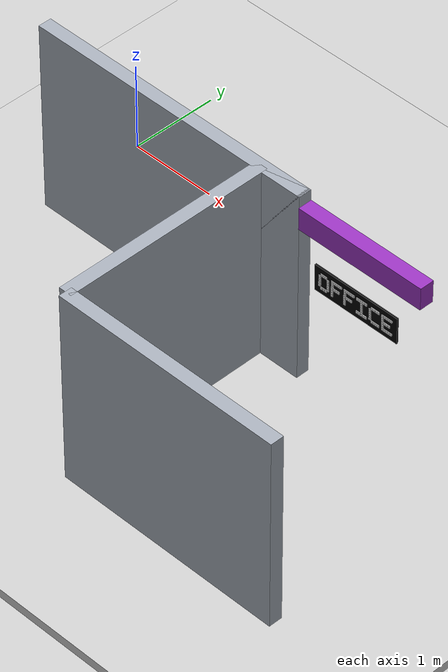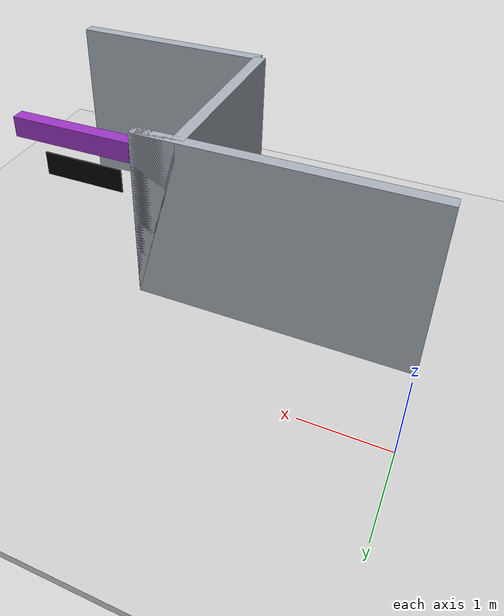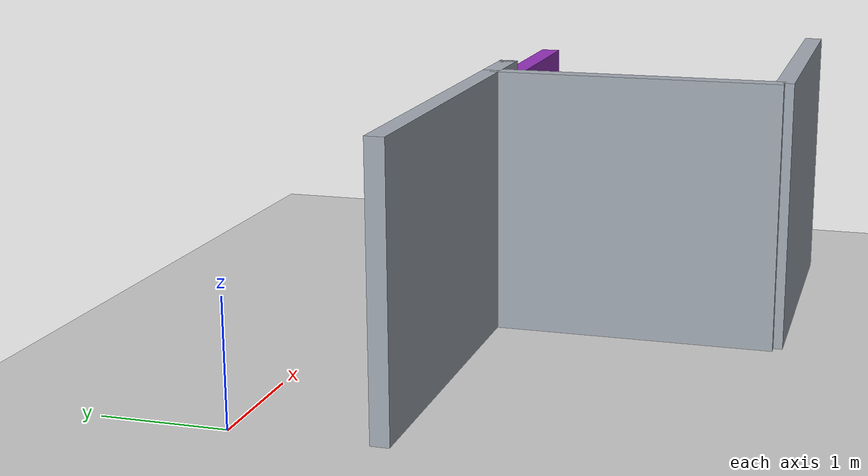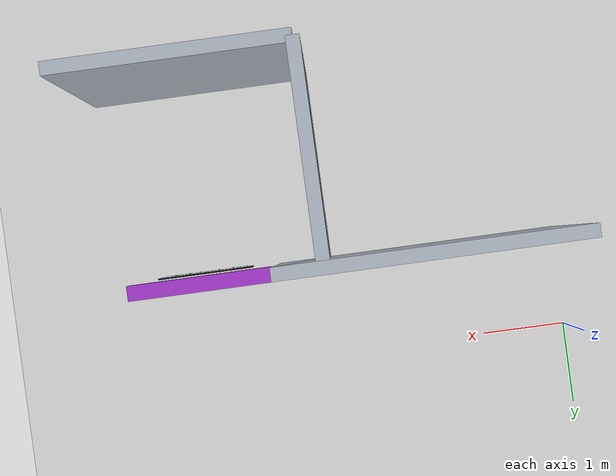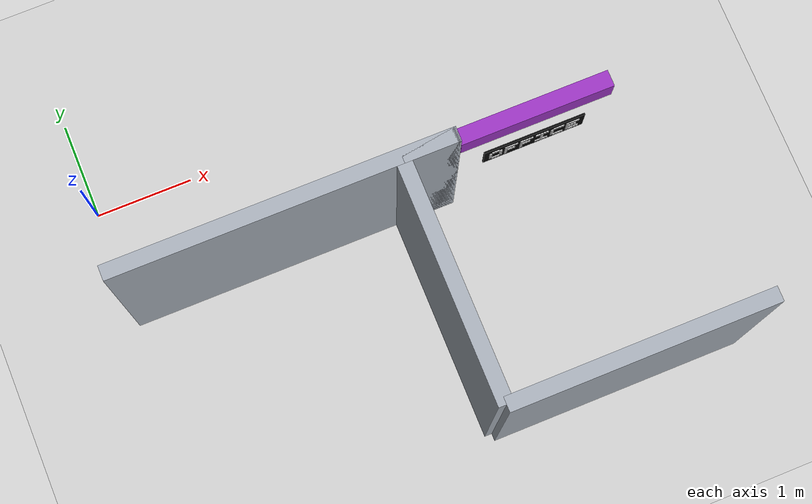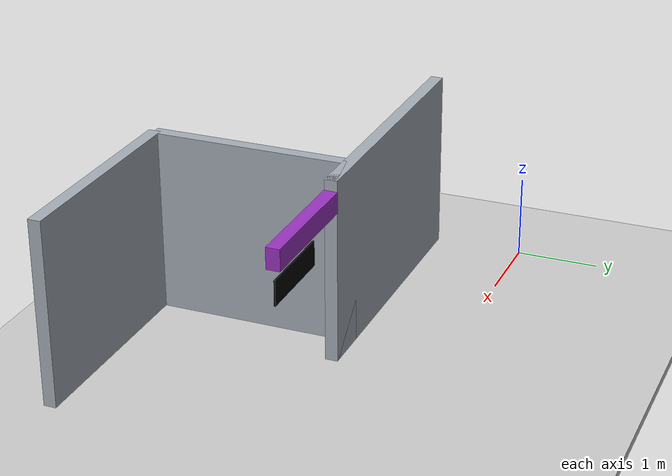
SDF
<sdf version="1.9">
 <world name="default">
  <model name="ground_plane">
   <static>true</static>
   <pose>5.15 0 -0.05 0 0 0</pose>
   <link name="body">
    <collision name="collision"><geometry><box><size>14.3 12 0.1</size></box></geometry></collision>
    <visual name="visual">
     <geometry><box><size>14.3 12 0.1</size></box></geometry>
     <material><ambient>0.8 0.8 0.8 1</ambient><diffuse>0.8 0.8 0.8 1</diffuse></material>
    </visual>
   </link>
  </model>
  <model name="hall_-1_1">
   <static>true</static>
   <pose>1.7000000000000002 -1.15 1.1 0 0 0</pose>
   <link name="body">
    <collision name="collision">
     <geometry><box><size>3.4000000000000004 0.15 2.2</size></box></geometry>
    </collision>
    <visual name="visual">
     <geometry><box><size>3.4000000000000004 0.15 2.2</size></box></geometry>
     <material><ambient>0.65 0.68 0.72 1</ambient><diffuse>0.65 0.68 0.72 1</diffuse></material>
    </visual>
   </link>
  </model>
  <model name="room_-1_1_-1">
   <static>true</static>
   <pose>2.8500000000000005 -2.3499999999999996 1.1 0 0 0</pose>
   <link name="body">
    <collision name="collision"><geometry><box><size>0.15 2.4 2.2</size></box></geometry></collision>
    <visual name="visual">
     <geometry><box><size>0.15 2.4 2.2</size></box></geometry>
     <material><ambient>0.65 0.68 0.72 1</ambient><diffuse>0.65 0.68 0.72 1</diffuse></material>
    </visual>
   </link>
  </model>
  <model name="room_end_-1_1">
   <static>true</static>
   <pose>4.15 -3.55 1.1 0 0 0</pose>
   <link name="body">
    <collision name="collision"><geometry><box><size>2.6 0.15 2.2</size></box></geometry></collision>
    <visual name="visual">
     <geometry><box><size>2.6 0.15 2.2</size></box></geometry>
     <material><ambient>0.65 0.68 0.72 1</ambient><diffuse>0.65 0.68 0.72 1</diffuse></material>
    </visual>
   </link>
  </model>
  <model name="jamb_-1_1_-1">
   <static>true</static>
   <pose>3.1250000000000004 -1.15 1.1 0 0 0</pose>
   <link name="body">
    <collision name="collision"><geometry><box><size>0.55 0.15 2.2</size></box></geometry></collision>
    <visual name="visual">
     <geometry><box><size>0.55 0.15 2.2</size></box></geometry>
     <material><ambient>0.65 0.68 0.72 1</ambient><diffuse>0.65 0.68 0.72 1</diffuse></material>
    </visual>
   </link>
  </model>
  <model name="r3geo_base_r009_right_1_lintel">
   <static>true</static>
   <pose>4.15 -1.15 1.95 0 0 0</pose>
   <link name="body">
    <collision name="collision"><geometry><box><size>1.5 0.16 0.25</size></box></geometry></collision>
    <visual name="visual">
     <geometry><box><size>1.5 0.16 0.25</size></box></geometry>
     <material><ambient>0.6 0.2 0.75 1</ambient><diffuse>0.6 0.2 0.75 1</diffuse></material>
    </visual>
   </link>
  </model>
  <model name="readable_r3geo_base_r009_right_1_entrance_room">
   <static>true</static>
   <pose>4.15 -1.25 1.43 0 0 0</pose>
   <link name="lettering">
    <visual name="backboard">
     <geometry><box><size>1.02 0.018 0.3</size></box></geometry>
     <material>
      <ambient>.015 .015 .015 1</ambient>
      <diffuse>.015 .015 .015 1</diffuse>
      <emissive>.015 .015 .015 1</emissive>
     </material>
     <cast_shadows>false</cast_shadows>
    </visual>
    <visual name="letter_0_0_1">
     <pose>-0.416 -0.014 0.078 0 0 0</pose>
     <geometry><box><size>0.024439999999999996 0.008 0.024439999999999996</size></box></geometry>
     <material>
      <ambient>.96 .96 .96 1</ambient>
      <diffuse>.96 .96 .96 1</diffuse>
      <emissive>.96 .96 .96 1</emissive>
     </material>
     <cast_shadows>false</cast_shadows>
    </visual>
    <visual name="letter_0_0_2">
     <pose>-0.39 -0.014 0.078 0 0 0</pose>
     <geometry><box><size>0.024439999999999996 0.008 0.024439999999999996</size></box></geometry>
     <material>
      <ambient>.96 .96 .96 1</ambient>
      <diffuse>.96 .96 .96 1</diffuse>
      <emissive>.96 .96 .96 1</emissive>
     </material>
     <cast_shadows>false</cast_shadows>
    </visual>
    <visual name="letter_0_0_3">
     <pose>-0.364 -0.014 0.078 0 0 0</pose>
     <geometry><box><size>0.024439999999999996 0.008 0.024439999999999996</size></box></geometry>
     <material>
      <ambient>.96 .96 .96 1</ambient>
      <diffuse>.96 .96 .96 1</diffuse>
      <emissive>.96 .96 .96 1</emissive>
     </material>
     <cast_shadows>false</cast_shadows>
    </visual>
    <visual name="letter_0_1_0">
     <pose>-0.442 -0.014 0.052 0 0 0</pose>
     <geometry><box><size>0.024439999999999996 0.008 0.024439999999999996</size></box></geometry>
     <material>
      <ambient>.96 .96 .96 1</ambient>
      <diffuse>.96 .96 .96 1</diffuse>
      <emissive>.96 .96 .96 1</emissive>
     </material>
     <cast_shadows>false</cast_shadows>
    </visual>
    <visual name="letter_0_1_4">
     <pose>-0.338 -0.014 0.052 0 0 0</pose>
     <geometry><box><size>0.024439999999999996 0.008 0.024439999999999996</size></box></geometry>
     <material>
      <ambient>.96 .96 .96 1</ambient>
      <diffuse>.96 .96 .96 1</diffuse>
      <emissive>.96 .96 .96 1</emissive>
     </material>
     <cast_shadows>false</cast_shadows>
    </visual>
    <visual name="letter_0_2_0">
     <pose>-0.442 -0.014 0.026 0 0 0</pose>
     <geometry><box><size>0.024439999999999996 0.008 0.024439999999999996</size></box></geometry>
     <material>
      <ambient>.96 .96 .96 1</ambient>
      <diffuse>.96 .96 .96 1</diffuse>
      <emissive>.96 .96 .96 1</emissive>
     </material>
     <cast_shadows>false</cast_shadows>
    </visual>
    <visual name="letter_0_2_4">
     <pose>-0.338 -0.014 0.026 0 0 0</pose>
     <geometry><box><size>0.024439999999999996 0.008 0.024439999999999996</size></box></geometry>
     <material>
      <ambient>.96 .96 .96 1</ambient>
      <diffuse>.96 .96 .96 1</diffuse>
      <emissive>.96 .96 .96 1</emissive>
     </material>
     <cast_shadows>false</cast_shadows>
    </visual>
    <visual name="letter_0_3_0">
     <pose>-0.442 -0.014 0 0 0 0</pose>
     <geometry><box><size>0.024439999999999996 0.008 0.024439999999999996</size></box></geometry>
     <material>
      <ambient>.96 .96 .96 1</ambient>
      <diffuse>.96 .96 .96 1</diffuse>
      <emissive>.96 .96 .96 1</emissive>
     </material>
     <cast_shadows>false</cast_shadows>
    </visual>
    <visual name="letter_0_3_4">
     <pose>-0.338 -0.014 0 0 0 0</pose>
     <geometry><box><size>0.024439999999999996 0.008 0.024439999999999996</size></box></geometry>
     <material>
      <ambient>.96 .96 .96 1</ambient>
      <diffuse>.96 .96 .96 1</diffuse>
      <emissive>.96 .96 .96 1</emissive>
     </material>
     <cast_shadows>false</cast_shadows>
    </visual>
    <visual name="letter_0_4_0">
     <pose>-0.442 -0.014 -0.026 0 0 0</pose>
     <geometry><box><size>0.024439999999999996 0.008 0.024439999999999996</size></box></geometry>
     <material>
      <ambient>.96 .96 .96 1</ambient>
      <diffuse>.96 .96 .96 1</diffuse>
      <emissive>.96 .96 .96 1</emissive>
     </material>
     <cast_shadows>false</cast_shadows>
    </visual>
    <visual name="letter_0_4_4">
     <pose>-0.338 -0.014 -0.026 0 0 0</pose>
     <geometry><box><size>0.024439999999999996 0.008 0.024439999999999996</size></box></geometry>
     <material>
      <ambient>.96 .96 .96 1</ambient>
      <diffuse>.96 .96 .96 1</diffuse>
      <emissive>.96 .96 .96 1</emissive>
     </material>
     <cast_shadows>false</cast_shadows>
    </visual>
    <visual name="letter_0_5_0">
     <pose>-0.442 -0.014 -0.052 0 0 0</pose>
     <geometry><box><size>0.024439999999999996 0.008 0.024439999999999996</size></box></geometry>
     <material>
      <ambient>.96 .96 .96 1</ambient>
      <diffuse>.96 .96 .96 1</diffuse>
      <emissive>.96 .96 .96 1</emissive>
     </material>
     <cast_shadows>false</cast_shadows>
    </visual>
    <visual name="letter_0_5_4">
     <pose>-0.338 -0.014 -0.052 0 0 0</pose>
     <geometry><box><size>0.024439999999999996 0.008 0.024439999999999996</size></box></geometry>
     <material>
      <ambient>.96 .96 .96 1</ambient>
      <diffuse>.96 .96 .96 1</diffuse>
      <emissive>.96 .96 .96 1</emissive>
     </material>
     <cast_shadows>false</cast_shadows>
    </visual>
    <visual name="letter_0_6_1">
     <pose>-0.416 -0.014 -0.078 0 0 0</pose>
     <geometry><box><size>0.024439999999999996 0.008 0.024439999999999996</size></box></geometry>
     <material>
      <ambient>.96 .96 .96 1</ambient>
      <diffuse>.96 .96 .96 1</diffuse>
      <emissive>.96 .96 .96 1</emissive>
     </material>
     <cast_shadows>false</cast_shadows>
    </visual>
    <visual name="letter_0_6_2">
     <pose>-0.39 -0.014 -0.078 0 0 0</pose>
     <geometry><box><size>0.024439999999999996 0.008 0.024439999999999996</size></box></geometry>
     <material>
      <ambient>.96 .96 .96 1</ambient>
      <diffuse>.96 .96 .96 1</diffuse>
      <emissive>.96 .96 .96 1</emissive>
     </material>
     <cast_shadows>false</cast_shadows>
    </visual>
    <visual name="letter_0_6_3">
     <pose>-0.364 -0.014 -0.078 0 0 0</pose>
     <geometry><box><size>0.024439999999999996 0.008 0.024439999999999996</size></box></geometry>
     <material>
      <ambient>.96 .96 .96 1</ambient>
      <diffuse>.96 .96 .96 1</diffuse>
      <emissive>.96 .96 .96 1</emissive>
     </material>
     <cast_shadows>false</cast_shadows>
    </visual>
    <visual name="letter_1_0_0">
     <pose>-0.286 -0.014 0.078 0 0 0</pose>
     <geometry><box><size>0.024439999999999996 0.008 0.024439999999999996</size></box></geometry>
     <material>
      <ambient>.96 .96 .96 1</ambient>
      <diffuse>.96 .96 .96 1</diffuse>
      <emissive>.96 .96 .96 1</emissive>
     </material>
     <cast_shadows>false</cast_shadows>
    </visual>
    <visual name="letter_1_0_1">
     <pose>-0.26 -0.014 0.078 0 0 0</pose>
     <geometry><box><size>0.024439999999999996 0.008 0.024439999999999996</size></box></geometry>
     <material>
      <ambient>.96 .96 .96 1</ambient>
      <diffuse>.96 .96 .96 1</diffuse>
      <emissive>.96 .96 .96 1</emissive>
     </material>
     <cast_shadows>false</cast_shadows>
    </visual>
    <visual name="letter_1_0_2">
     <pose>-0.234 -0.014 0.078 0 0 0</pose>
     <geometry><box><size>0.024439999999999996 0.008 0.024439999999999996</size></box></geometry>
     <material>
      <ambient>.96 .96 .96 1</ambient>
      <diffuse>.96 .96 .96 1</diffuse>
      <emissive>.96 .96 .96 1</emissive>
     </material>
     <cast_shadows>false</cast_shadows>
    </visual>
    <visual name="letter_1_0_3">
     <pose>-0.208 -0.014 0.078 0 0 0</pose>
     <geometry><box><size>0.024439999999999996 0.008 0.024439999999999996</size></box></geometry>
     <material>
      <ambient>.96 .96 .96 1</ambient>
      <diffuse>.96 .96 .96 1</diffuse>
      <emissive>.96 .96 .96 1</emissive>
     </material>
     <cast_shadows>false</cast_shadows>
    </visual>
    <visual name="letter_1_0_4">
     <pose>-0.182 -0.014 0.078 0 0 0</pose>
     <geometry><box><size>0.024439999999999996 0.008 0.024439999999999996</size></box></geometry>
     <material>
      <ambient>.96 .96 .96 1</ambient>
      <diffuse>.96 .96 .96 1</diffuse>
      <emissive>.96 .96 .96 1</emissive>
     </material>
     <cast_shadows>false</cast_shadows>
    </visual>
    <visual name="letter_1_1_0">
     <pose>-0.286 -0.014 0.052 0 0 0</pose>
     <geometry><box><size>0.024439999999999996 0.008 0.024439999999999996</size></box></geometry>
     <material>
      <ambient>.96 .96 .96 1</ambient>
      <diffuse>.96 .96 .96 1</diffuse>
      <emissive>.96 .96 .96 1</emissive>
     </material>
     <cast_shadows>false</cast_shadows>
    </visual>
    <visual name="letter_1_2_0">
     <pose>-0.286 -0.014 0.026 0 0 0</pose>
     <geometry><box><size>0.024439999999999996 0.008 0.024439999999999996</size></box></geometry>
     <material>
      <ambient>.96 .96 .96 1</ambient>
      <diffuse>.96 .96 .96 1</diffuse>
      <emissive>.96 .96 .96 1</emissive>
     </material>
     <cast_shadows>false</cast_shadows>
    </visual>
    <visual name="letter_1_3_0">
     <pose>-0.286 -0.014 0 0 0 0</pose>
     <geometry><box><size>0.024439999999999996 0.008 0.024439999999999996</size></box></geometry>
     <material>
      <ambient>.96 .96 .96 1</ambient>
      <diffuse>.96 .96 .96 1</diffuse>
      <emissive>.96 .96 .96 1</emissive>
     </material>
     <cast_shadows>false</cast_shadows>
    </visual>
    <visual name="letter_1_3_1">
     <pose>-0.26 -0.014 0 0 0 0</pose>
     <geometry><box><size>0.024439999999999996 0.008 0.024439999999999996</size></box></geometry>
     <material>
      <ambient>.96 .96 .96 1</ambient>
      <diffuse>.96 .96 .96 1</diffuse>
      <emissive>.96 .96 .96 1</emissive>
     </material>
     <cast_shadows>false</cast_shadows>
    </visual>
    <visual name="letter_1_3_2">
     <pose>-0.234 -0.014 0 0 0 0</pose>
     <geometry><box><size>0.024439999999999996 0.008 0.024439999999999996</size></box></geometry>
     <material>
      <ambient>.96 .96 .96 1</ambient>
      <diffuse>.96 .96 .96 1</diffuse>
      <emissive>.96 .96 .96 1</emissive>
     </material>
     <cast_shadows>false</cast_shadows>
    </visual>
    <visual name="letter_1_3_3">
     <pose>-0.208 -0.014 0 0 0 0</pose>
     <geometry><box><size>0.024439999999999996 0.008 0.024439999999999996</size></box></geometry>
     <material>
      <ambient>.96 .96 .96 1</ambient>
      <diffuse>.96 .96 .96 1</diffuse>
      <emissive>.96 .96 .96 1</emissive>
     </material>
     <cast_shadows>false</cast_shadows>
    </visual>
    <visual name="letter_1_4_0">
     <pose>-0.286 -0.014 -0.026 0 0 0</pose>
     <geometry><box><size>0.024439999999999996 0.008 0.024439999999999996</size></box></geometry>
     <material>
      <ambient>.96 .96 .96 1</ambient>
      <diffuse>.96 .96 .96 1</diffuse>
      <emissive>.96 .96 .96 1</emissive>
     </material>
     <cast_shadows>false</cast_shadows>
    </visual>
    <visual name="letter_1_5_0">
     <pose>-0.286 -0.014 -0.052 0 0 0</pose>
     <geometry><box><size>0.024439999999999996 0.008 0.024439999999999996</size></box></geometry>
     <material>
      <ambient>.96 .96 .96 1</ambient>
      <diffuse>.96 .96 .96 1</diffuse>
      <emissive>.96 .96 .96 1</emissive>
     </material>
     <cast_shadows>false</cast_shadows>
    </visual>
    <visual name="letter_1_6_0">
     <pose>-0.286 -0.014 -0.078 0 0 0</pose>
     <geometry><box><size>0.024439999999999996 0.008 0.024439999999999996</size></box></geometry>
     <material>
      <ambient>.96 .96 .96 1</ambient>
      <diffuse>.96 .96 .96 1</diffuse>
      <emissive>.96 .96 .96 1</emissive>
     </material>
     <cast_shadows>false</cast_shadows>
    </visual>
    <visual name="letter_2_0_0">
     <pose>-0.13 -0.014 0.078 0 0 0</pose>
     <geometry><box><size>0.024439999999999996 0.008 0.024439999999999996</size></box></geometry>
     <material>
      <ambient>.96 .96 .96 1</ambient>
      <diffuse>.96 .96 .96 1</diffuse>
      <emissive>.96 .96 .96 1</emissive>
     </material>
     <cast_shadows>false</cast_shadows>
    </visual>
    <visual name="letter_2_0_1">
     <pose>-0.104 -0.014 0.078 0 0 0</pose>
     <geometry><box><size>0.024439999999999996 0.008 0.024439999999999996</size></box></geometry>
     <material>
      <ambient>.96 .96 .96 1</ambient>
      <diffuse>.96 .96 .96 1</diffuse>
      <emissive>.96 .96 .96 1</emissive>
     </material>
     <cast_shadows>false</cast_shadows>
    </visual>
    <visual name="letter_2_0_2">
     <pose>-0.078 -0.014 0.078 0 0 0</pose>
     <geometry><box><size>0.024439999999999996 0.008 0.024439999999999996</size></box></geometry>
     <material>
      <ambient>.96 .96 .96 1</ambient>
      <diffuse>.96 .96 .96 1</diffuse>
      <emissive>.96 .96 .96 1</emissive>
     </material>
     <cast_shadows>false</cast_shadows>
    </visual>
    <visual name="letter_2_0_3">
     <pose>-0.052 -0.014 0.078 0 0 0</pose>
     <geometry><box><size>0.024439999999999996 0.008 0.024439999999999996</size></box></geometry>
     <material>
      <ambient>.96 .96 .96 1</ambient>
      <diffuse>.96 .96 .96 1</diffuse>
      <emissive>.96 .96 .96 1</emissive>
     </material>
     <cast_shadows>false</cast_shadows>
    </visual>
    <visual name="letter_2_0_4">
     <pose>-0.026 -0.014 0.078 0 0 0</pose>
     <geometry><box><size>0.024439999999999996 0.008 0.024439999999999996</size></box></geometry>
     <material>
      <ambient>.96 .96 .96 1</ambient>
      <diffuse>.96 .96 .96 1</diffuse>
      <emissive>.96 .96 .96 1</emissive>
     </material>
     <cast_shadows>false</cast_shadows>
    </visual>
    <visual name="letter_2_1_0">
     <pose>-0.13 -0.014 0.052 0 0 0</pose>
     <geometry><box><size>0.024439999999999996 0.008 0.024439999999999996</size></box></geometry>
     <material>
      <ambient>.96 .96 .96 1</ambient>
      <diffuse>.96 .96 .96 1</diffuse>
      <emissive>.96 .96 .96 1</emissive>
     </material>
     <cast_shadows>false</cast_shadows>
    </visual>
    <visual name="letter_2_2_0">
     <pose>-0.13 -0.014 0.026 0 0 0</pose>
     <geometry><box><size>0.024439999999999996 0.008 0.024439999999999996</size></box></geometry>
     <material>
      <ambient>.96 .96 .96 1</ambient>
      <diffuse>.96 .96 .96 1</diffuse>
      <emissive>.96 .96 .96 1</emissive>
     </material>
     <cast_shadows>false</cast_shadows>
    </visual>
    <visual name="letter_2_3_0">
     <pose>-0.13 -0.014 0 0 0 0</pose>
     <geometry><box><size>0.024439999999999996 0.008 0.024439999999999996</size></box></geometry>
     <material>
      <ambient>.96 .96 .96 1</ambient>
      <diffuse>.96 .96 .96 1</diffuse>
      <emissive>.96 .96 .96 1</emissive>
     </material>
     <cast_shadows>false</cast_shadows>
    </visual>
    <visual name="letter_2_3_1">
     <pose>-0.104 -0.014 0 0 0 0</pose>
     <geometry><box><size>0.024439999999999996 0.008 0.024439999999999996</size></box></geometry>
     <material>
      <ambient>.96 .96 .96 1</ambient>
      <diffuse>.96 .96 .96 1</diffuse>
      <emissive>.96 .96 .96 1</emissive>
     </material>
     <cast_shadows>false</cast_shadows>
    </visual>
    <visual name="letter_2_3_2">
     <pose>-0.078 -0.014 0 0 0 0</pose>
     <geometry><box><size>0.024439999999999996 0.008 0.024439999999999996</size></box></geometry>
     <material>
      <ambient>.96 .96 .96 1</ambient>
      <diffuse>.96 .96 .96 1</diffuse>
      <emissive>.96 .96 .96 1</emissive>
     </material>
     <cast_shadows>false</cast_shadows>
    </visual>
    <visual name="letter_2_3_3">
     <pose>-0.052 -0.014 0 0 0 0</pose>
     <geometry><box><size>0.024439999999999996 0.008 0.024439999999999996</size></box></geometry>
     <material>
      <ambient>.96 .96 .96 1</ambient>
      <diffuse>.96 .96 .96 1</diffuse>
      <emissive>.96 .96 .96 1</emissive>
     </material>
     <cast_shadows>false</cast_shadows>
    </visual>
    <visual name="letter_2_4_0">
     <pose>-0.13 -0.014 -0.026 0 0 0</pose>
     <geometry><box><size>0.024439999999999996 0.008 0.024439999999999996</size></box></geometry>
     <material>
      <ambient>.96 .96 .96 1</ambient>
      <diffuse>.96 .96 .96 1</diffuse>
      <emissive>.96 .96 .96 1</emissive>
     </material>
     <cast_shadows>false</cast_shadows>
    </visual>
    <visual name="letter_2_5_0">
     <pose>-0.13 -0.014 -0.052 0 0 0</pose>
     <geometry><box><size>0.024439999999999996 0.008 0.024439999999999996</size></box></geometry>
     <material>
      <ambient>.96 .96 .96 1</ambient>
      <diffuse>.96 .96 .96 1</diffuse>
      <emissive>.96 .96 .96 1</emissive>
     </material>
     <cast_shadows>false</cast_shadows>
    </visual>
    <visual name="letter_2_6_0">
     <pose>-0.13 -0.014 -0.078 0 0 0</pose>
     <geometry><box><size>0.024439999999999996 0.008 0.024439999999999996</size></box></geometry>
     <material>
      <ambient>.96 .96 .96 1</ambient>
      <diffuse>.96 .96 .96 1</diffuse>
      <emissive>.96 .96 .96 1</emissive>
     </material>
     <cast_shadows>false</cast_shadows>
    </visual>
    <visual name="letter_3_0_0">
     <pose>0.026 -0.014 0.078 0 0 0</pose>
     <geometry><box><size>0.024439999999999996 0.008 0.024439999999999996</size></box></geometry>
     <material>
      <ambient>.96 .96 .96 1</ambient>
      <diffuse>.96 .96 .96 1</diffuse>
      <emissive>.96 .96 .96 1</emissive>
     </material>
     <cast_shadows>false</cast_shadows>
    </visual>
    <visual name="letter_3_0_1">
     <pose>0.052 -0.014 0.078 0 0 0</pose>
     <geometry><box><size>0.024439999999999996 0.008 0.024439999999999996</size></box></geometry>
     <material>
      <ambient>.96 .96 .96 1</ambient>
      <diffuse>.96 .96 .96 1</diffuse>
      <emissive>.96 .96 .96 1</emissive>
     </material>
     <cast_shadows>false</cast_shadows>
    </visual>
    <visual name="letter_3_0_2">
     <pose>0.078 -0.014 0.078 0 0 0</pose>
     <geometry><box><size>0.024439999999999996 0.008 0.024439999999999996</size></box></geometry>
     <material>
      <ambient>.96 .96 .96 1</ambient>
      <diffuse>.96 .96 .96 1</diffuse>
      <emissive>.96 .96 .96 1</emissive>
     </material>
     <cast_shadows>false</cast_shadows>
    </visual>
    <visual name="letter_3_0_3">
     <pose>0.104 -0.014 0.078 0 0 0</pose>
     <geometry><box><size>0.024439999999999996 0.008 0.024439999999999996</size></box></geometry>
     <material>
      <ambient>.96 .96 .96 1</ambient>
      <diffuse>.96 .96 .96 1</diffuse>
      <emissive>.96 .96 .96 1</emissive>
     </material>
     <cast_shadows>false</cast_shadows>
    </visual>
    <visual name="letter_3_0_4">
     <pose>0.13 -0.014 0.078 0 0 0</pose>
     <geometry><box><size>0.024439999999999996 0.008 0.024439999999999996</size></box></geometry>
     <material>
      <ambient>.96 .96 .96 1</ambient>
      <diffuse>.96 .96 .96 1</diffuse>
      <emissive>.96 .96 .96 1</emissive>
     </material>
     <cast_shadows>false</cast_shadows>
    </visual>
    <visual name="letter_3_1_2">
     <pose>0.078 -0.014 0.052 0 0 0</pose>
     <geometry><box><size>0.024439999999999996 0.008 0.024439999999999996</size></box></geometry>
     <material>
      <ambient>.96 .96 .96 1</ambient>
      <diffuse>.96 .96 .96 1</diffuse>
      <emissive>.96 .96 .96 1</emissive>
     </material>
     <cast_shadows>false</cast_shadows>
    </visual>
    <visual name="letter_3_2_2">
     <pose>0.078 -0.014 0.026 0 0 0</pose>
     <geometry><box><size>0.024439999999999996 0.008 0.024439999999999996</size></box></geometry>
     <material>
      <ambient>.96 .96 .96 1</ambient>
      <diffuse>.96 .96 .96 1</diffuse>
      <emissive>.96 .96 .96 1</emissive>
     </material>
     <cast_shadows>false</cast_shadows>
    </visual>
    <visual name="letter_3_3_2">
     <pose>0.078 -0.014 0 0 0 0</pose>
     <geometry><box><size>0.024439999999999996 0.008 0.024439999999999996</size></box></geometry>
     <material>
      <ambient>.96 .96 .96 1</ambient>
      <diffuse>.96 .96 .96 1</diffuse>
      <emissive>.96 .96 .96 1</emissive>
     </material>
     <cast_shadows>false</cast_shadows>
    </visual>
    <visual name="letter_3_4_2">
     <pose>0.078 -0.014 -0.026 0 0 0</pose>
     <geometry><box><size>0.024439999999999996 0.008 0.024439999999999996</size></box></geometry>
     <material>
      <ambient>.96 .96 .96 1</ambient>
      <diffuse>.96 .96 .96 1</diffuse>
      <emissive>.96 .96 .96 1</emissive>
     </material>
     <cast_shadows>false</cast_shadows>
    </visual>
    <visual name="letter_3_5_2">
     <pose>0.078 -0.014 -0.052 0 0 0</pose>
     <geometry><box><size>0.024439999999999996 0.008 0.024439999999999996</size></box></geometry>
     <material>
      <ambient>.96 .96 .96 1</ambient>
      <diffuse>.96 .96 .96 1</diffuse>
      <emissive>.96 .96 .96 1</emissive>
     </material>
     <cast_shadows>false</cast_shadows>
    </visual>
    <visual name="letter_3_6_0">
     <pose>0.026 -0.014 -0.078 0 0 0</pose>
     <geometry><box><size>0.024439999999999996 0.008 0.024439999999999996</size></box></geometry>
     <material>
      <ambient>.96 .96 .96 1</ambient>
      <diffuse>.96 .96 .96 1</diffuse>
      <emissive>.96 .96 .96 1</emissive>
     </material>
     <cast_shadows>false</cast_shadows>
    </visual>
    <visual name="letter_3_6_1">
     <pose>0.052 -0.014 -0.078 0 0 0</pose>
     <geometry><box><size>0.024439999999999996 0.008 0.024439999999999996</size></box></geometry>
     <material>
      <ambient>.96 .96 .96 1</ambient>
      <diffuse>.96 .96 .96 1</diffuse>
      <emissive>.96 .96 .96 1</emissive>
     </material>
     <cast_shadows>false</cast_shadows>
    </visual>
    <visual name="letter_3_6_2">
     <pose>0.078 -0.014 -0.078 0 0 0</pose>
     <geometry><box><size>0.024439999999999996 0.008 0.024439999999999996</size></box></geometry>
     <material>
      <ambient>.96 .96 .96 1</ambient>
      <diffuse>.96 .96 .96 1</diffuse>
      <emissive>.96 .96 .96 1</emissive>
     </material>
     <cast_shadows>false</cast_shadows>
    </visual>
    <visual name="letter_3_6_3">
     <pose>0.104 -0.014 -0.078 0 0 0</pose>
     <geometry><box><size>0.024439999999999996 0.008 0.024439999999999996</size></box></geometry>
     <material>
      <ambient>.96 .96 .96 1</ambient>
      <diffuse>.96 .96 .96 1</diffuse>
      <emissive>.96 .96 .96 1</emissive>
     </material>
     <cast_shadows>false</cast_shadows>
    </visual>
    <visual name="letter_3_6_4">
     <pose>0.13 -0.014 -0.078 0 0 0</pose>
     <geometry><box><size>0.024439999999999996 0.008 0.024439999999999996</size></box></geometry>
     <material>
      <ambient>.96 .96 .96 1</ambient>
      <diffuse>.96 .96 .96 1</diffuse>
      <emissive>.96 .96 .96 1</emissive>
     </material>
     <cast_shadows>false</cast_shadows>
    </visual>
    <visual name="letter_4_0_1">
     <pose>0.208 -0.014 0.078 0 0 0</pose>
     <geometry><box><size>0.024439999999999996 0.008 0.024439999999999996</size></box></geometry>
     <material>
      <ambient>.96 .96 .96 1</ambient>
      <diffuse>.96 .96 .96 1</diffuse>
      <emissive>.96 .96 .96 1</emissive>
     </material>
     <cast_shadows>false</cast_shadows>
    </visual>
    <visual name="letter_4_0_2">
     <pose>0.234 -0.014 0.078 0 0 0</pose>
     <geometry><box><size>0.024439999999999996 0.008 0.024439999999999996</size></box></geometry>
     <material>
      <ambient>.96 .96 .96 1</ambient>
      <diffuse>.96 .96 .96 1</diffuse>
      <emissive>.96 .96 .96 1</emissive>
     </material>
     <cast_shadows>false</cast_shadows>
    </visual>
    <visual name="letter_4_0_3">
     <pose>0.26 -0.014 0.078 0 0 0</pose>
     <geometry><box><size>0.024439999999999996 0.008 0.024439999999999996</size></box></geometry>
     <material>
      <ambient>.96 .96 .96 1</ambient>
      <diffuse>.96 .96 .96 1</diffuse>
      <emissive>.96 .96 .96 1</emissive>
     </material>
     <cast_shadows>false</cast_shadows>
    </visual>
    <visual name="letter_4_0_4">
     <pose>0.286 -0.014 0.078 0 0 0</pose>
     <geometry><box><size>0.024439999999999996 0.008 0.024439999999999996</size></box></geometry>
     <material>
      <ambient>.96 .96 .96 1</ambient>
      <diffuse>.96 .96 .96 1</diffuse>
      <emissive>.96 .96 .96 1</emissive>
     </material>
     <cast_shadows>false</cast_shadows>
    </visual>
    <visual name="letter_4_1_0">
     <pose>0.182 -0.014 0.052 0 0 0</pose>
     <geometry><box><size>0.024439999999999996 0.008 0.024439999999999996</size></box></geometry>
     <material>
      <ambient>.96 .96 .96 1</ambient>
      <diffuse>.96 .96 .96 1</diffuse>
      <emissive>.96 .96 .96 1</emissive>
     </material>
     <cast_shadows>false</cast_shadows>
    </visual>
    <visual name="letter_4_2_0">
     <pose>0.182 -0.014 0.026 0 0 0</pose>
     <geometry><box><size>0.024439999999999996 0.008 0.024439999999999996</size></box></geometry>
     <material>
      <ambient>.96 .96 .96 1</ambient>
      <diffuse>.96 .96 .96 1</diffuse>
      <emissive>.96 .96 .96 1</emissive>
     </material>
     <cast_shadows>false</cast_shadows>
    </visual>
    <visual name="letter_4_3_0">
     <pose>0.182 -0.014 0 0 0 0</pose>
     <geometry><box><size>0.024439999999999996 0.008 0.024439999999999996</size></box></geometry>
     <material>
      <ambient>.96 .96 .96 1</ambient>
      <diffuse>.96 .96 .96 1</diffuse>
      <emissive>.96 .96 .96 1</emissive>
     </material>
     <cast_shadows>false</cast_shadows>
    </visual>
    <visual name="letter_4_4_0">
     <pose>0.182 -0.014 -0.026 0 0 0</pose>
     <geometry><box><size>0.024439999999999996 0.008 0.024439999999999996</size></box></geometry>
     <material>
      <ambient>.96 .96 .96 1</ambient>
      <diffuse>.96 .96 .96 1</diffuse>
      <emissive>.96 .96 .96 1</emissive>
     </material>
     <cast_shadows>false</cast_shadows>
    </visual>
    <visual name="letter_4_5_0">
     <pose>0.182 -0.014 -0.052 0 0 0</pose>
     <geometry><box><size>0.024439999999999996 0.008 0.024439999999999996</size></box></geometry>
     <material>
      <ambient>.96 .96 .96 1</ambient>
      <diffuse>.96 .96 .96 1</diffuse>
      <emissive>.96 .96 .96 1</emissive>
     </material>
     <cast_shadows>false</cast_shadows>
    </visual>
    <visual name="letter_4_6_1">
     <pose>0.208 -0.014 -0.078 0 0 0</pose>
     <geometry><box><size>0.024439999999999996 0.008 0.024439999999999996</size></box></geometry>
     <material>
      <ambient>.96 .96 .96 1</ambient>
      <diffuse>.96 .96 .96 1</diffuse>
      <emissive>.96 .96 .96 1</emissive>
     </material>
     <cast_shadows>false</cast_shadows>
    </visual>
    <visual name="letter_4_6_2">
     <pose>0.234 -0.014 -0.078 0 0 0</pose>
     <geometry><box><size>0.024439999999999996 0.008 0.024439999999999996</size></box></geometry>
     <material>
      <ambient>.96 .96 .96 1</ambient>
      <diffuse>.96 .96 .96 1</diffuse>
      <emissive>.96 .96 .96 1</emissive>
     </material>
     <cast_shadows>false</cast_shadows>
    </visual>
    <visual name="letter_4_6_3">
     <pose>0.26 -0.014 -0.078 0 0 0</pose>
     <geometry><box><size>0.024439999999999996 0.008 0.024439999999999996</size></box></geometry>
     <material>
      <ambient>.96 .96 .96 1</ambient>
      <diffuse>.96 .96 .96 1</diffuse>
      <emissive>.96 .96 .96 1</emissive>
     </material>
     <cast_shadows>false</cast_shadows>
    </visual>
    <visual name="letter_4_6_4">
     <pose>0.286 -0.014 -0.078 0 0 0</pose>
     <geometry><box><size>0.024439999999999996 0.008 0.024439999999999996</size></box></geometry>
     <material>
      <ambient>.96 .96 .96 1</ambient>
      <diffuse>.96 .96 .96 1</diffuse>
      <emissive>.96 .96 .96 1</emissive>
     </material>
     <cast_shadows>false</cast_shadows>
    </visual>
    <visual name="letter_5_0_0">
     <pose>0.338 -0.014 0.078 0 0 0</pose>
     <geometry><box><size>0.024439999999999996 0.008 0.024439999999999996</size></box></geometry>
     <material>
      <ambient>.96 .96 .96 1</ambient>
      <diffuse>.96 .96 .96 1</diffuse>
      <emissive>.96 .96 .96 1</emissive>
     </material>
     <cast_shadows>false</cast_shadows>
    </visual>
    <visual name="letter_5_0_1">
     <pose>0.364 -0.014 0.078 0 0 0</pose>
     <geometry><box><size>0.024439999999999996 0.008 0.024439999999999996</size></box></geometry>
     <material>
      <ambient>.96 .96 .96 1</ambient>
      <diffuse>.96 .96 .96 1</diffuse>
      <emissive>.96 .96 .96 1</emissive>
     </material>
     <cast_shadows>false</cast_shadows>
    </visual>
    <visual name="letter_5_0_2">
     <pose>0.39 -0.014 0.078 0 0 0</pose>
     <geometry><box><size>0.024439999999999996 0.008 0.024439999999999996</size></box></geometry>
     <material>
      <ambient>.96 .96 .96 1</ambient>
      <diffuse>.96 .96 .96 1</diffuse>
      <emissive>.96 .96 .96 1</emissive>
     </material>
     <cast_shadows>false</cast_shadows>
    </visual>
    <visual name="letter_5_0_3">
     <pose>0.416 -0.014 0.078 0 0 0</pose>
     <geometry><box><size>0.024439999999999996 0.008 0.024439999999999996</size></box></geometry>
     <material>
      <ambient>.96 .96 .96 1</ambient>
      <diffuse>.96 .96 .96 1</diffuse>
      <emissive>.96 .96 .96 1</emissive>
     </material>
     <cast_shadows>false</cast_shadows>
    </visual>
    <visual name="letter_5_0_4">
     <pose>0.442 -0.014 0.078 0 0 0</pose>
     <geometry><box><size>0.024439999999999996 0.008 0.024439999999999996</size></box></geometry>
     <material>
      <ambient>.96 .96 .96 1</ambient>
      <diffuse>.96 .96 .96 1</diffuse>
      <emissive>.96 .96 .96 1</emissive>
     </material>
     <cast_shadows>false</cast_shadows>
    </visual>
    <visual name="letter_5_1_0">
     <pose>0.338 -0.014 0.052 0 0 0</pose>
     <geometry><box><size>0.024439999999999996 0.008 0.024439999999999996</size></box></geometry>
     <material>
      <ambient>.96 .96 .96 1</ambient>
      <diffuse>.96 .96 .96 1</diffuse>
      <emissive>.96 .96 .96 1</emissive>
     </material>
     <cast_shadows>false</cast_shadows>
    </visual>
    <visual name="letter_5_2_0">
     <pose>0.338 -0.014 0.026 0 0 0</pose>
     <geometry><box><size>0.024439999999999996 0.008 0.024439999999999996</size></box></geometry>
     <material>
      <ambient>.96 .96 .96 1</ambient>
      <diffuse>.96 .96 .96 1</diffuse>
      <emissive>.96 .96 .96 1</emissive>
     </material>
     <cast_shadows>false</cast_shadows>
    </visual>
    <visual name="letter_5_3_0">
     <pose>0.338 -0.014 0 0 0 0</pose>
     <geometry><box><size>0.024439999999999996 0.008 0.024439999999999996</size></box></geometry>
     <material>
      <ambient>.96 .96 .96 1</ambient>
      <diffuse>.96 .96 .96 1</diffuse>
      <emissive>.96 .96 .96 1</emissive>
     </material>
     <cast_shadows>false</cast_shadows>
    </visual>
    <visual name="letter_5_3_1">
     <pose>0.364 -0.014 0 0 0 0</pose>
     <geometry><box><size>0.024439999999999996 0.008 0.024439999999999996</size></box></geometry>
     <material>
      <ambient>.96 .96 .96 1</ambient>
      <diffuse>.96 .96 .96 1</diffuse>
      <emissive>.96 .96 .96 1</emissive>
     </material>
     <cast_shadows>false</cast_shadows>
    </visual>
    <visual name="letter_5_3_2">
     <pose>0.39 -0.014 0 0 0 0</pose>
     <geometry><box><size>0.024439999999999996 0.008 0.024439999999999996</size></box></geometry>
     <material>
      <ambient>.96 .96 .96 1</ambient>
      <diffuse>.96 .96 .96 1</diffuse>
      <emissive>.96 .96 .96 1</emissive>
     </material>
     <cast_shadows>false</cast_shadows>
    </visual>
    <visual name="letter_5_3_3">
     <pose>0.416 -0.014 0 0 0 0</pose>
     <geometry><box><size>0.024439999999999996 0.008 0.024439999999999996</size></box></geometry>
     <material>
      <ambient>.96 .96 .96 1</ambient>
      <diffuse>.96 .96 .96 1</diffuse>
      <emissive>.96 .96 .96 1</emissive>
     </material>
     <cast_shadows>false</cast_shadows>
    </visual>
    <visual name="letter_5_4_0">
     <pose>0.338 -0.014 -0.026 0 0 0</pose>
     <geometry><box><size>0.024439999999999996 0.008 0.024439999999999996</size></box></geometry>
     <material>
      <ambient>.96 .96 .96 1</ambient>
      <diffuse>.96 .96 .96 1</diffuse>
      <emissive>.96 .96 .96 1</emissive>
     </material>
     <cast_shadows>false</cast_shadows>
    </visual>
    <visual name="letter_5_5_0">
     <pose>0.338 -0.014 -0.052 0 0 0</pose>
     <geometry><box><size>0.024439999999999996 0.008 0.024439999999999996</size></box></geometry>
     <material>
      <ambient>.96 .96 .96 1</ambient>
      <diffuse>.96 .96 .96 1</diffuse>
      <emissive>.96 .96 .96 1</emissive>
     </material>
     <cast_shadows>false</cast_shadows>
    </visual>
    <visual name="letter_5_6_0">
     <pose>0.338 -0.014 -0.078 0 0 0</pose>
     <geometry><box><size>0.024439999999999996 0.008 0.024439999999999996</size></box></geometry>
     <material>
      <ambient>.96 .96 .96 1</ambient>
      <diffuse>.96 .96 .96 1</diffuse>
      <emissive>.96 .96 .96 1</emissive>
     </material>
     <cast_shadows>false</cast_shadows>
    </visual>
    <visual name="letter_5_6_1">
     <pose>0.364 -0.014 -0.078 0 0 0</pose>
     <geometry><box><size>0.024439999999999996 0.008 0.024439999999999996</size></box></geometry>
     <material>
      <ambient>.96 .96 .96 1</ambient>
      <diffuse>.96 .96 .96 1</diffuse>
      <emissive>.96 .96 .96 1</emissive>
     </material>
     <cast_shadows>false</cast_shadows>
    </visual>
    <visual name="letter_5_6_2">
     <pose>0.39 -0.014 -0.078 0 0 0</pose>
     <geometry><box><size>0.024439999999999996 0.008 0.024439999999999996</size></box></geometry>
     <material>
      <ambient>.96 .96 .96 1</ambient>
      <diffuse>.96 .96 .96 1</diffuse>
      <emissive>.96 .96 .96 1</emissive>
     </material>
     <cast_shadows>false</cast_shadows>
    </visual>
    <visual name="letter_5_6_3">
     <pose>0.416 -0.014 -0.078 0 0 0</pose>
     <geometry><box><size>0.024439999999999996 0.008 0.024439999999999996</size></box></geometry>
     <material>
      <ambient>.96 .96 .96 1</ambient>
      <diffuse>.96 .96 .96 1</diffuse>
      <emissive>.96 .96 .96 1</emissive>
     </material>
     <cast_shadows>false</cast_shadows>
    </visual>
    <visual name="letter_5_6_4">
     <pose>0.442 -0.014 -0.078 0 0 0</pose>
     <geometry><box><size>0.024439999999999996 0.008 0.024439999999999996</size></box></geometry>
     <material>
      <ambient>.96 .96 .96 1</ambient>
      <diffuse>.96 .96 .96 1</diffuse>
      <emissive>.96 .96 .96 1</emissive>
     </material>
     <cast_shadows>false</cast_shadows>
    </visual>
   </link>
  </model>
 </world>
</sdf>
